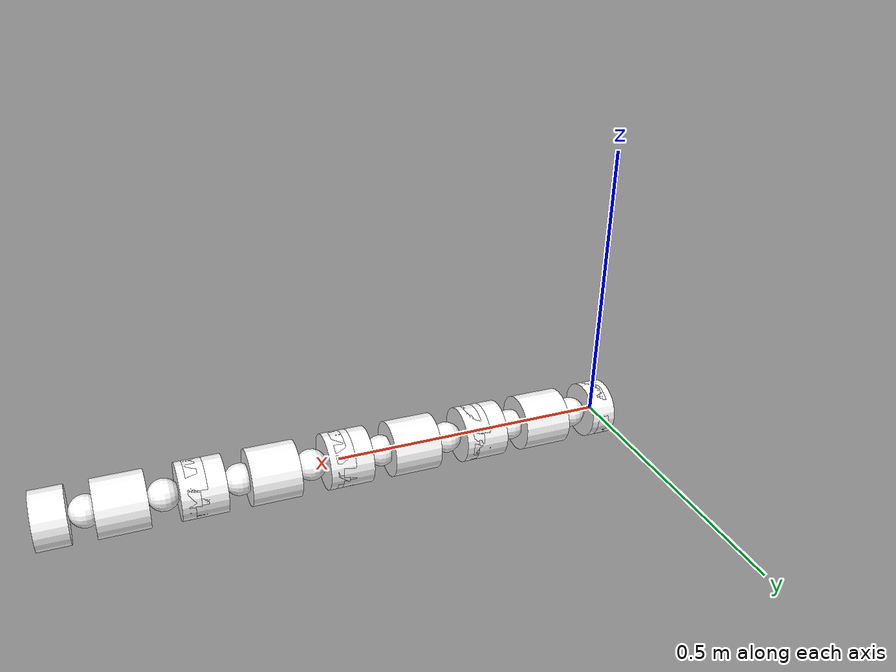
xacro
<?xml version="1.0" encoding="UTF-8"?>
<robot xmlns:xacro = "http://www.ros.org/wiki/xacro" name = "simplified_snakebot">
    <material name = "white">
        <color rgba = "1 1 1 1"/>
    </material>

    <!-- MODULE ONE-->
    <!-- First Joint -->
    <!-- Bottom Bracket-->
    <link name = "base_link">
        <visual>
            <origin rpy = "0 1.5708 0" xyz = "0 0 0"/>
            <geometry>
                <cylinder radius = "0.05" length = "0.02"/>
            </geometry>
            <material name = "white"/>
        </visual>
    </link>
    <link name = "m1_bottom_bracket_one">
        <visual>
            <origin rpy = "0 1.5708 0" xyz = "0 0 0"/>
            <geometry>
                <cylinder radius = "0.05" length = "0.045"/>
            </geometry>
            <material name = "white"/>
        </visual>
        <collision>
            <origin rpy = "0 1.5708 0" xyz = "0 0 0"/>
            <geometry>
                <cylinder radius = "0.05" length = "0.045"/>
            </geometry>
        </collision>
    </link>
    <joint name = "m1_prismatic_joint" type = "prismatic">
        <parent link = "base_link"/>
        <child link = "m1_bottom_bracket_one"/>
        <axis xyz = "1 0 0"/>
        <limit lower = "0" upper = "0.02" effort = "1" velocity = "0.01"/>
        <origin rpy = "0 0 0" xyz = "0 0 0"/>
    </joint>

    <!-- Second Joint - rotation between two joints -->
    <link name = "m1_sphere">
        <visual>
            <origin rpy = "0 1.5708 0" xyz = "0 0 0"/>
            <geometry>
                <sphere radius = "0.0275"/>
            </geometry>
            <material name = "white"/>
        </visual>
    </link>
    <joint name = "m1_revolute_one_joint" type = "continuous">
        <parent link = "m1_bottom_bracket_one"/>
        <child link = "m1_sphere"/>
        <axis xyz = "1 0 0"/>
        <origin xyz = "0.045 0 0"/>
    </joint>

    <!-- Third Joint - Prismatic -->
    <link name = "m1_middle_bracket">
        <visual>
            <origin rpy = "0 1.5708 0" xyz = "0 0 0"/>
            <geometry>
                <cylinder radius = "0.05" length = "0.085"/>
            </geometry>
            <material name = "white"/>
        </visual>
    </link>
    <joint name = "m1_third_joint" type = "fixed">
        <parent link = "m1_sphere"/>
        <child link = "m1_middle_bracket"/>
        <origin rpy = "0 0 0" xyz = "0.07 0 0"/>
    </joint>

    <!--Fourth Joint - Revolute-->
    <link name = "m1_sphere_two">
        <visual>
            <origin rpy = "0 1.5708 0" xyz = "0 0 0"/>
            <geometry>
                <sphere radius = "0.0275"/>
            </geometry>
            <material name = "white"/>
        </visual>
    </link>
    <joint name = "m1_fourth_joint" type = "fixed">
        <parent link = "m1_middle_bracket"/>
        <child link = "m1_sphere_two"/>
        <origin rpy = "0 0 0" xyz = "0.055 0 0"/>
    </joint>

    <!--Fifth Joint - Revolute -->
    <link name = "m1_top_bracket">
        <visual>
            <origin rpy = "0 1.5708 0" xyz = "0 0 0"/>
            <geometry>
                <cylinder radius = "0.05" length = "0.055"/>
            </geometry>
            <material name = "white"/>
        </visual>
    </link>
    <joint name = "m1_revolute_two_joint" type = "revolute">
        <parent link = "m1_sphere_two"/>
        <child link = "m1_virtual_link"/>
        <axis xyz = "0 1 0"/>
        <limit lower = "-0.5" upper = "0.5" effort = "1" velocity = "0.01"/>
        <origin rpy = "0 0 0" xyz = "0.055 0 0"/>
    </joint>
    <!-- adding infinitesimally small link-->
    <link name = "m1_virtual_link"/>
    <joint name = "m1_revolute_three_joint" type = "revolute">
        <parent link = "m1_virtual_link"/>
        <child link = "m1_top_bracket"/>
        <axis xyz = "0 0 1"/>
        <limit lower = "-0.5" upper = "0.5" effort = "1" velocity = "0.01"/>
        <origin rpy = "0 0 0" xyz = "0 0 0"/>
    </joint>

    <!-- Module Two-->
    <!-- Final Fixed Joint-->
    <link name = "m2_base_link">
        <visual>
            <origin rpy = "0 1.5708 0" xyz = "0 0 0"/>
            <geometry>
                <cylinder radius = "0.05" length = "0.02"/>
            </geometry>
            <material name = "white"/>
        </visual>
    </link>
    <joint name = "m1_final_joint" type = "fixed">
        <parent link = "m1_top_bracket"/>
        <child link = "m2_base_link"/>
        <origin xyz = "0.0275 0 0"/>
    </joint>

    <!-- First Joint -->
    <!-- Bottom Bracket-->

    <link name = "m2_bottom_bracket_one">
        <visual>
            <origin rpy = "0 1.5708 0" xyz = "0 0 0"/>
            <geometry>
                <cylinder radius = "0.05" length = "0.045"/>
            </geometry>
            <material name = "white"/>
        </visual>
        <collision>
            <origin rpy = "0 1.5708 0" xyz = "0 0 0"/>
            <geometry>
                <cylinder radius = "0.05" length = "0.045"/>
            </geometry>
        </collision>
    </link>
    <joint name = "m2_prismatic_joint" type = "prismatic">
        <parent link = "m2_base_link"/>
        <child link = "m2_bottom_bracket_one"/>
        <axis xyz = "1 0 0"/>
        <limit lower = "0" upper = "0.02" effort = "1" velocity = "0.01"/>
        <origin rpy = "0 0 0" xyz = "0 0 0"/>
    </joint>

    <!-- Second Joint - rotation between two joints -->
    <link name = "m2_sphere">
        <visual>
            <origin rpy = "0 1.5708 0" xyz = "0 0 0"/>
            <geometry>
                <sphere radius = "0.0275"/>
            </geometry>
            <material name = "white"/>
        </visual>
    </link>
    <joint name = "m2_revolute_one_joint" type = "continuous">
        <parent link = "m2_bottom_bracket_one"/>
        <child link = "m2_sphere"/>
        <axis xyz = "1 0 0"/>
        <origin xyz = "0.045 0 0"/>
    </joint>

    <!-- Third Joint - Prismatic -->
    <link name = "m2_middle_bracket">
        <visual>
            <origin rpy = "0 1.5708 0" xyz = "0 0 0"/>
            <geometry>
                <cylinder radius = "0.05" length = "0.085"/>
            </geometry>
            <material name = "white"/>
        </visual>
    </link>
    <joint name = "m2_third_joint" type = "fixed">
        <parent link = "m2_sphere"/>
        <child link = "m2_middle_bracket"/>
        <origin rpy = "0 0 0" xyz = "0.07 0 0"/>
    </joint>

    <!--Fourth Joint - Revolute-->
    <link name = "m2_sphere_two">
        <visual>
            <origin rpy = "0 1.5708 0" xyz = "0 0 0"/>
            <geometry>
                <sphere radius = "0.0275"/>
            </geometry>
            <material name = "white"/>
        </visual>
    </link>
    <joint name = "m2_fourth_joint" type = "fixed">
        <parent link = "m2_middle_bracket"/>
        <child link = "m2_sphere_two"/>
        <origin rpy = "0 0 0" xyz = "0.055 0 0"/>
    </joint>

    <!--Fifth Joint - Revolute -->
    <link name = "m2_top_bracket">
        <visual>
            <origin rpy = "0 1.5708 0" xyz = "0 0 0"/>
            <geometry>
                <cylinder radius = "0.05" length = "0.055"/>
            </geometry>
            <material name = "white"/>
        </visual>
    </link>
    <joint name = "m2_revolute_two_joint" type = "revolute">
        <parent link = "m2_sphere_two"/>
        <child link = "m2_virtual_link"/>
        <axis xyz = "0 1 0"/>
        <limit lower = "-0.5" upper = "0.5" effort = "1" velocity = "0.01"/>
        <origin rpy = "0 0 0" xyz = "0.055 0 0"/>
    </joint>
    <!-- adding infinitesimally small link-->
    <link name = "m2_virtual_link"/>
    <joint name = "m2_revolute_three_joint" type = "revolute">
        <parent link = "m2_virtual_link"/>
        <child link = "m2_top_bracket"/>
        <axis xyz = "0 0 1"/>
        <limit lower = "-0.5" upper = "0.5" effort = "1" velocity = "0.01"/>
        <origin rpy = "0 0 0" xyz = "0 0 0"/>
    </joint>

    <!-- Module Three-->
    <!-- Final Fixed Joint-->
    <link name = "m3_base_link">
        <visual>
            <origin rpy = "0 1.5708 0" xyz = "0 0 0"/>
            <geometry>
                <cylinder radius = "0.05" length = "0.02"/>
            </geometry>
            <material name = "white"/>
        </visual>
    </link>
    <joint name = "m3_final_joint" type = "fixed">
        <parent link = "m2_top_bracket"/>
        <child link = "m3_base_link"/>
        <origin xyz = "0.0275 0 0"/>
    </joint>

    <!-- First Joint -->
    <!-- Bottom Bracket-->

    <link name = "m3_bottom_bracket_one">
        <visual>
            <origin rpy = "0 1.5708 0" xyz = "0 0 0"/>
            <geometry>
                <cylinder radius = "0.05" length = "0.045"/>
            </geometry>
            <material name = "white"/>
        </visual>
        <collision>
            <origin rpy = "0 1.5708 0" xyz = "0 0 0"/>
            <geometry>
                <cylinder radius = "0.05" length = "0.045"/>
            </geometry>
        </collision>
    </link>
    <joint name = "m3_prismatic_joint" type = "prismatic">
        <parent link = "m3_base_link"/>
        <child link = "m3_bottom_bracket_one"/>
        <axis xyz = "1 0 0"/>
        <limit lower = "0" upper = "0.02" effort = "1" velocity = "0.01"/>
        <origin rpy = "0 0 0" xyz = "0 0 0"/>
    </joint>

    <!-- Second Joint - rotation between two joints -->
    <link name = "m3_sphere">
        <visual>
            <origin rpy = "0 1.5708 0" xyz = "0 0 0"/>
            <geometry>
                <sphere radius = "0.0275"/>
            </geometry>
            <material name = "white"/>
        </visual>
    </link>
    <joint name = "m3_revolute_one_joint" type = "continuous">
        <parent link = "m3_bottom_bracket_one"/>
        <child link = "m3_sphere"/>
        <axis xyz = "1 0 0"/>
        <origin xyz = "0.045 0 0"/>
    </joint>

    <!-- Third Joint - Prismatic -->
    <link name = "m3_middle_bracket">
        <visual>
            <origin rpy = "0 1.5708 0" xyz = "0 0 0"/>
            <geometry>
                <cylinder radius = "0.05" length = "0.085"/>
            </geometry>
            <material name = "white"/>
        </visual>
    </link>
    <joint name = "m3_third_joint" type = "fixed">
        <parent link = "m3_sphere"/>
        <child link = "m3_middle_bracket"/>
        <origin rpy = "0 0 0" xyz = "0.07 0 0"/>
    </joint>

    <!--Fourth Joint - Revolute-->
    <link name = "m3_sphere_two">
        <visual>
            <origin rpy = "0 1.5708 0" xyz = "0 0 0"/>
            <geometry>
                <sphere radius = "0.0275"/>
            </geometry>
            <material name = "white"/>
        </visual>
    </link>
    <joint name = "m3_fourth_joint" type = "fixed">
        <parent link = "m3_middle_bracket"/>
        <child link = "m3_sphere_two"/>
        <origin rpy = "0 0 0" xyz = "0.055 0 0"/>
    </joint>

    <!--Fifth Joint - Revolute -->
    <link name = "m3_top_bracket">
        <visual>
            <origin rpy = "0 1.5708 0" xyz = "0 0 0"/>
            <geometry>
                <cylinder radius = "0.05" length = "0.055"/>
            </geometry>
            <material name = "white"/>
        </visual>
    </link>
    <joint name = "m3_revolute_two_joint" type = "revolute">
        <parent link = "m3_sphere_two"/>
        <child link = "m3_virtual_link"/>
        <axis xyz = "0 1 0"/>
        <limit lower = "-0.5" upper = "0.5" effort = "1" velocity = "0.01"/>
        <origin rpy = "0 0 0" xyz = "0.055 0 0"/>
    </joint>
    <!-- adding infinitesimally small link-->
    <link name = "m3_virtual_link"/>
    <joint name = "m3_revolute_three_joint" type = "revolute">
        <parent link = "m3_virtual_link"/>
        <child link = "m3_top_bracket"/>
        <axis xyz = "0 0 1"/>
        <limit lower = "-0.5" upper = "0.5" effort = "1" velocity = "0.01"/>
        <origin rpy = "0 0 0" xyz = "0 0 0"/>
    </joint>

    <!-- Module Four-->
    <!-- Final Fixed Joint-->
    <link name = "m4_base_link">
        <visual>
            <origin rpy = "0 1.5708 0" xyz = "0 0 0"/>
            <geometry>
                <cylinder radius = "0.05" length = "0.02"/>
            </geometry>
            <material name = "white"/>
        </visual>
    </link>
    <joint name = "m4_final_joint" type = "fixed">
        <parent link = "m3_top_bracket"/>
        <child link = "m4_base_link"/>
        <origin xyz = "0.0275 0 0"/>
    </joint>

    <!-- First Joint -->
    <!-- Bottom Bracket-->

    <link name = "m4_bottom_bracket_one">
        <visual>
            <origin rpy = "0 1.5708 0" xyz = "0 0 0"/>
            <geometry>
                <cylinder radius = "0.05" length = "0.045"/>
            </geometry>
            <material name = "white"/>
        </visual>
        <collision>
            <origin rpy = "0 1.5708 0" xyz = "0 0 0"/>
            <geometry>
                <cylinder radius = "0.05" length = "0.045"/>
            </geometry>
        </collision>
    </link>
    <joint name = "m4_prismatic_joint" type = "prismatic">
        <parent link = "m4_base_link"/>
        <child link = "m4_bottom_bracket_one"/>
        <axis xyz = "1 0 0"/>
        <limit lower = "0" upper = "0.02" effort = "1" velocity = "0.01"/>
        <origin rpy = "0 0 0" xyz = "0 0 0"/>
    </joint>

    <!-- Second Joint - rotation between two joints -->
    <link name = "m4_sphere">
        <visual>
            <origin rpy = "0 1.5708 0" xyz = "0 0 0"/>
            <geometry>
                <sphere radius = "0.0275"/>
            </geometry>
            <material name = "white"/>
        </visual>
    </link>
    <joint name = "m4_revolute_one_joint" type = "continuous">
        <parent link = "m4_bottom_bracket_one"/>
        <child link = "m4_sphere"/>
        <axis xyz = "1 0 0"/>
        <origin xyz = "0.045 0 0"/>
    </joint>

    <!-- Third Joint - Prismatic -->
    <link name = "m4_middle_bracket">
        <visual>
            <origin rpy = "0 1.5708 0" xyz = "0 0 0"/>
            <geometry>
                <cylinder radius = "0.05" length = "0.085"/>
            </geometry>
            <material name = "white"/>
        </visual>
    </link>
    <joint name = "m4_third_joint" type = "fixed">
        <parent link = "m4_sphere"/>
        <child link = "m4_middle_bracket"/>
        <origin rpy = "0 0 0" xyz = "0.07 0 0"/>
    </joint>

    <!--Fourth Joint - Revolute-->
    <link name = "m4_sphere_two">
        <visual>
            <origin rpy = "0 1.5708 0" xyz = "0 0 0"/>
            <geometry>
                <sphere radius = "0.0275"/>
            </geometry>
            <material name = "white"/>
        </visual>
    </link>
    <joint name = "m4_fourth_joint" type = "fixed">
        <parent link = "m4_middle_bracket"/>
        <child link = "m4_sphere_two"/>
        <origin rpy = "0 0 0" xyz = "0.055 0 0"/>
    </joint>

    <!--Fifth Joint - Revolute -->
    <link name = "m4_top_bracket">
        <visual>
            <origin rpy = "0 1.5708 0" xyz = "0 0 0"/>
            <geometry>
                <cylinder radius = "0.05" length = "0.055"/>
            </geometry>
            <material name = "white"/>
        </visual>
    </link>
    <joint name = "m4_revolute_two_joint" type = "revolute">
        <parent link = "m4_sphere_two"/>
        <child link = "m4_virtual_link"/>
        <axis xyz = "0 1 0"/>
        <limit lower = "-0.5" upper = "0.5" effort = "1" velocity = "0.01"/>
        <origin rpy = "0 0 0" xyz = "0.055 0 0"/>
    </joint>
    <!-- adding infinitesimally small link-->
    <link name = "m4_virtual_link"/>
    <joint name = "m4_revolute_three_joint" type = "revolute">
        <parent link = "m4_virtual_link"/>
        <child link = "m4_top_bracket"/>
        <axis xyz = "0 0 1"/>
        <limit lower = "-0.5" upper = "0.5" effort = "1" velocity = "0.01"/>
        <origin rpy = "0 0 0" xyz = "0 0 0"/>
    </joint>
</robot>
